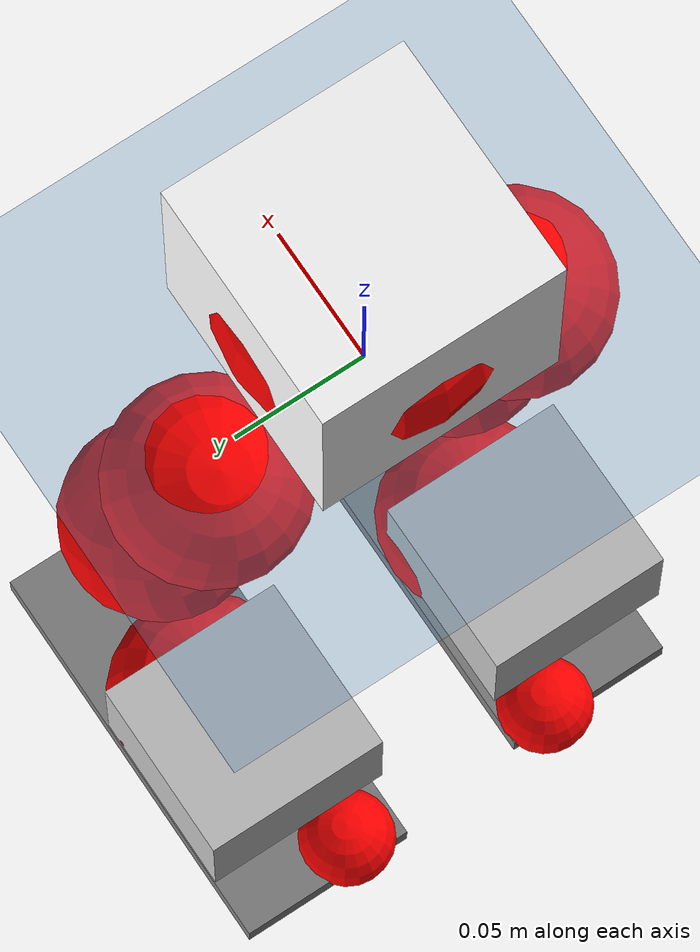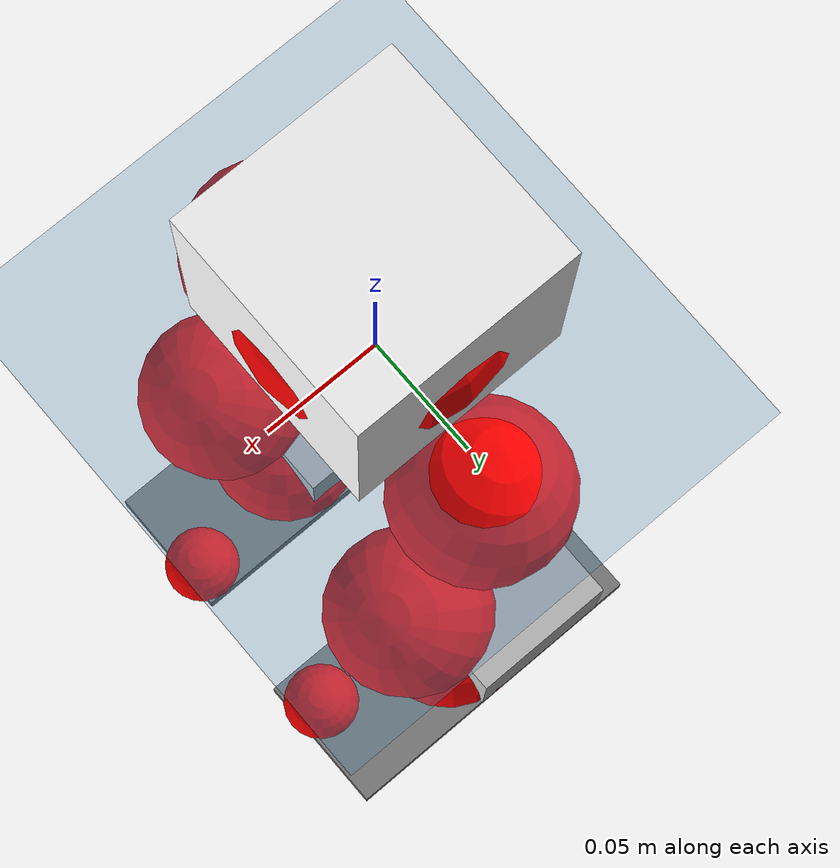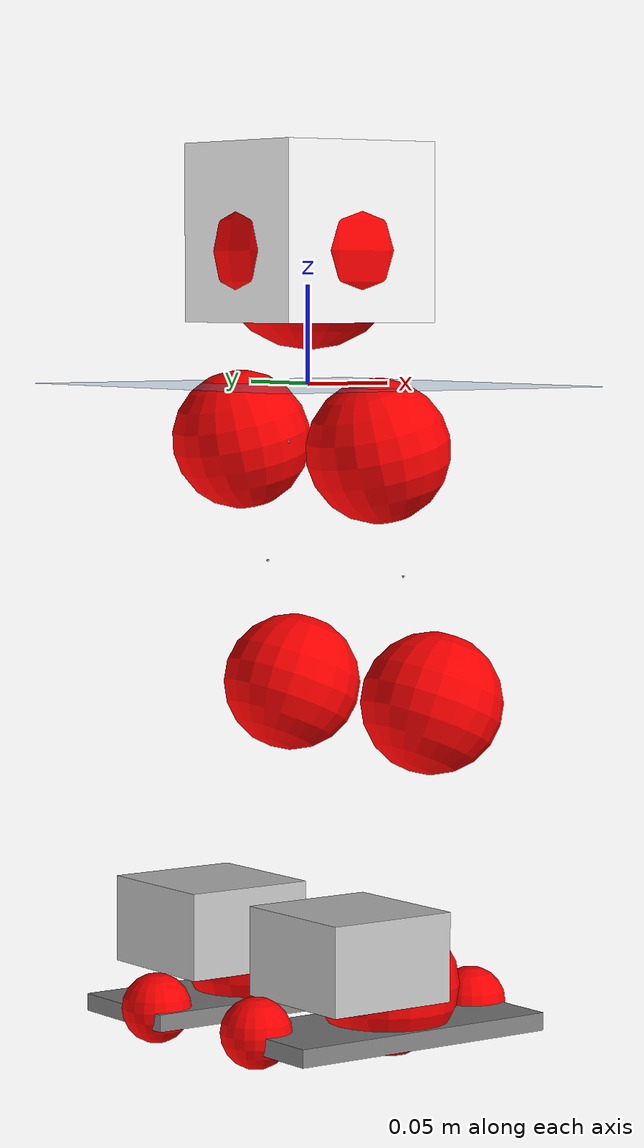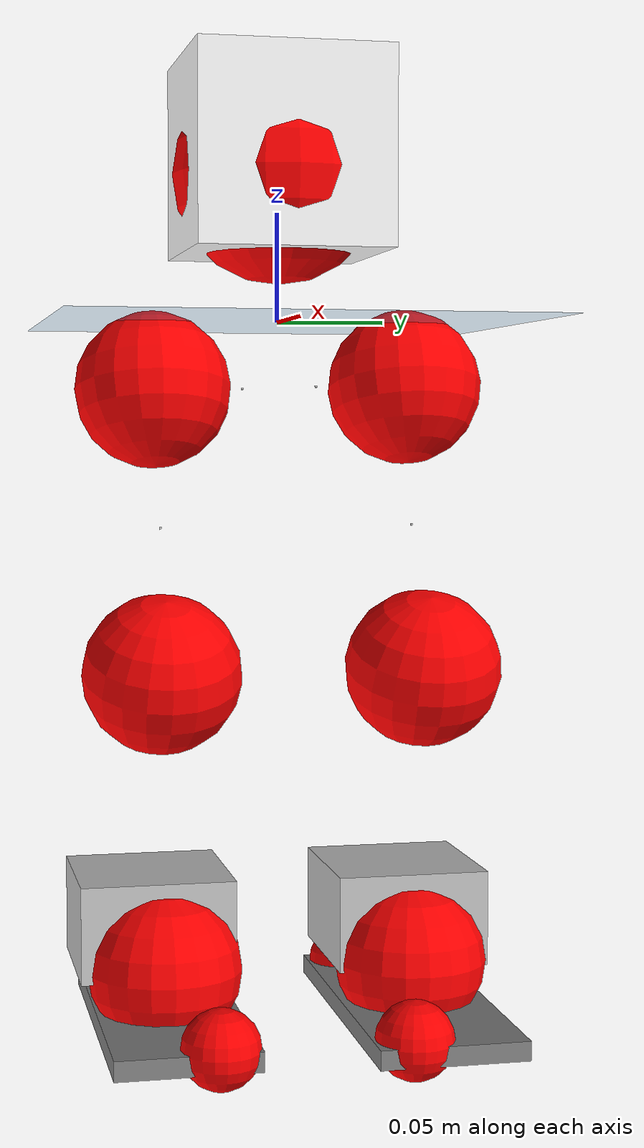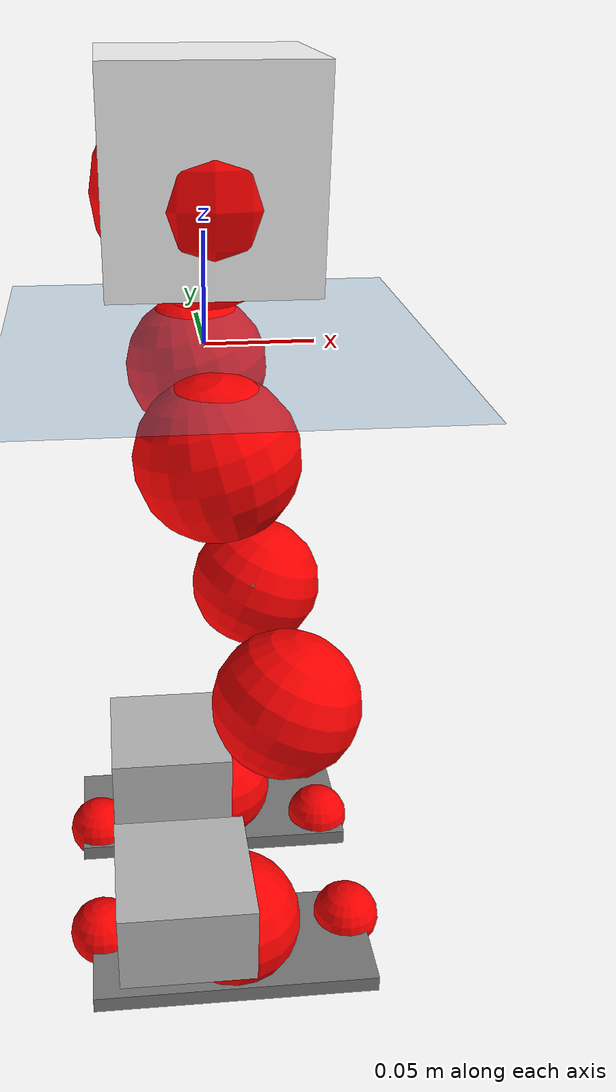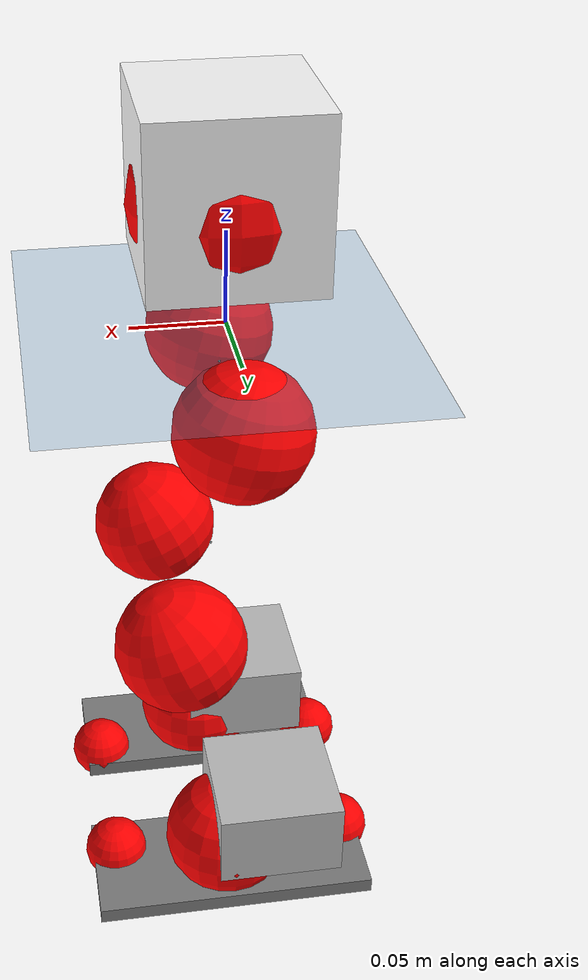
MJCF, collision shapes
<mujoco model="pi_12dof_release_v1">
  <compiler angle="radian" assetdir="assets" balanceinertia="true" inertiafromgeom="false"/>

  <option timestep="0.005" density="1.2" viscosity="2e-05"/>

  <size nkey="1"/>

  <visual>
    <quality shadowsize="8192"/>
    <map shadowclip="0.5"/>
  </visual>

  <default>
    <default class="/">
      <joint armature="0.01" damping="0.01" frictionloss="0.01"/>
      <geom contype="0" conaffinity="0" group="1" solref="-1000 -80"/>
      <site size="0.01 0.005 0.005" group="5"/>
      <general forcelimited="true" biastype="affine" gainprm="20" biasprm="0 -20 -0.5"/>
      <default class="foot">
        <geom size="0.0845 0.036 0.005" type="box" condim="6" group="4" priority="1" friction="0.9 0.2 0.2" solimp="0.015 1 0.005"/>
      </default>
      <default class="reward_collision_sphere">
        <geom group="5" rgba="1 0 0 1"/>
      </default>
    </default>
  </default>

  <asset>
    <texture type="skybox" colorspace="auto" name="//unnamed_texture_0" builtin="gradient" rgb1="0.95 0.95 0.95" rgb2="0.95 0.95 0.95" width="100" height="600"/>
    <texture type="2d" colorspace="auto" name="texplane" builtin="checker" rgb1="0.345 0.575 0.748" rgb2="0.345 0.575 0.748" markrgb="1 1 1" width="512" height="512"/>
    <material name="MatPlane" class="/" texture="texplane" texuniform="true" texrepeat="2 2" specular="0.9"/>
    <mesh name="baselink_1" class="/" file="baselink_1.STL"/>
    <mesh name="r_hip_pitch_link" class="/" file="r_hip_pitch_link.STL"/>
    <mesh name="r_hip_roll_link" class="/" file="r_hip_roll_link.STL"/>
    <mesh name="r_thigh_link" class="/" file="r_thigh_link.STL"/>
    <mesh name="r_calf_link" class="/" file="r_calf_link.STL"/>
    <mesh name="r_ankle_pitch_link" class="/" file="r_ankle_pitch_link.STL"/>
    <mesh name="r_ankle_roll_link" class="/" file="r_ankle_roll_link.STL"/>
    <mesh name="l_hip_pitch_link" class="/" file="l_hip_pitch_link.STL"/>
    <mesh name="l_hip_roll_link" class="/" file="l_hip_roll_link.STL"/>
    <mesh name="l_thigh_link" class="/" file="l_thigh_link.STL"/>
    <mesh name="l_calf_link" class="/" file="l_calf_link.STL"/>
    <mesh name="l_ankle_pitch_link" class="/" file="l_ankle_pitch_link.STL"/>
    <mesh name="l_ankle_roll_link" class="/" file="l_ankle_roll_link.STL"/>
  </asset>

  <worldbody>
    <geom name="floor" class="/" size="100 100 0.125" type="plane" group="0" material="MatPlane"/>
    <light name="toplight_shadow" class="/" pos="0 0 5" dir="0.0990148 0.0990148 -0.990148" type="directional" ambient="0.04 0.04 0.04" diffuse="0.55 0.55 0.55" specular="0.12 0.12 0.12"/>
    <light name="toplight_fill" class="/" pos="0 0 5" dir="0.0990148 0.0990148 -0.990148" type="directional" castshadow="false" ambient="0.04 0.04 0.04" diffuse="0.3 0.3 0.3" specular="0.08 0.08 0.08"/>
    <body name="trunk" pos="0.000729881 0.000304796 0.000666907" quat="1 -2.33514e-05 -6.63909e-05 7.48119e-05">
      <inertial pos="0.00175942 -0.000997913 0.0380275" quat="0.695059 0.00857929 0.0112675 0.718813" mass="1.5539" diaginertia="0.00972945 0.00223929 0.00311634"/>
      <joint name="//unnamed_joint_0" type="free"/>
      <geom name="//unnamed_geom_1" class="/" type="mesh" density="0" rgba="1 1 1 1" mesh="baselink_1"/>
      <geom name="//unnamed_geom_2" class="/" size="0.045041 0.045041 0.045041" pos="0 0 0.0755993" type="box" rgba="1 1 1 1"/>
      <geom name="//unnamed_geom_3" class="reward_collision_sphere" size="0.0495451" pos="0 0 0.0661494"/>
      <site name="imu" class="/" pos="0.00137666 -0.00420175 0.000224023" size="0.00900821"/>
      <camera name="track" class="/" pos="0 -1.51524 0" quat="0.707107 0.707107 0 0" mode="trackcom"/>
      <camera name="ego_camera" class="/" pos="0.0749887 0 0.170099" quat="-0.5 -0.5 0.5 0.5"/>
      <body name="r_hip_pitch_link" pos="0.000135321 -0.0173195 -0.0316728" quat="0.992202 -1.02717e-05 -0.124643 0.000325281">
        <inertial pos="0.00154392 -0.0420228 0.000294539" quat="-0.0194115 0.706456 -0.028387 0.706921" mass="0.274368" diaginertia="0.000110168 2.43806e-05 6.26022e-05"/>
        <joint name="r_hip_pitch_joint" class="/" pos="0 0 0" axis="0.000619072 -0.999999 0.00140122" stiffness="0.00331395" range="-1.73317 1.25459" armature="0.00891202" damping="0.011577" frictionloss="0.00869537"/>
        <geom name="//unnamed_geom_4" class="/" type="mesh" density="0" rgba="0.75294 0.75294 0.75294 1" mesh="r_hip_pitch_link"/>
        <geom name="//unnamed_geom_5" class="/" size="0.00045041 0.00045041 0.00045041" type="box" rgba="0.75294 0.75294 0.75294 1"/>
        <body name="r_hip_roll_link" pos="-0.000760261 -0.0415538 -0.000407702" quat="1 -0.000187328 -6.73653e-05 -0.000154191">
          <inertial pos="-0.00179566 0.000597513 -0.0585319" quat="0.70592 -0.0791001 -0.0825432 0.699004" mass="0.287593" diaginertia="0.000333896 6.97875e-05 9.87321e-05"/>
          <joint name="r_hip_roll_joint" class="/" pos="0 0 0" axis="-0.999994 0.00189302 0.00291642" range="-0.128504 0.512064" armature="0.00918855" damping="0.00172047" frictionloss="0.00884637"/>
          <geom name="//unnamed_geom_6" class="/" type="mesh" density="0" rgba="0.75294 0.75294 0.75294 1" mesh="r_hip_roll_link"/>
          <geom name="//unnamed_geom_7" class="/" size="0.00045041 0.00045041 0.00045041" type="box" rgba="0.75294 0.75294 0.75294 1"/>
          <geom name="//unnamed_geom_8" class="reward_collision_sphere" size="0.0360328"/>
          <body name="r_thigh_link" pos="0.000333748 0.000902397 -0.0650385" quat="1 8.76513e-06 0.000349699 0.00018358">
            <inertial pos="0.000922664 0.000575533 -0.0457958" quat="0.736252 0.676708 -4.97646e-05 -0.000107661" mass="0.0824618" diaginertia="0.000127588 2.362e-05 4.4227e-05"/>
            <joint name="r_thigh_joint" class="/" pos="0 0 0" axis="0.000914915 0.000557843 -0.999999" range="-0.291207 0.57704" armature="0.00935592" damping="0.00497548" frictionloss="0.00866589"/>
            <geom name="//unnamed_geom_9" class="/" type="mesh" density="0" rgba="0.75294 0.75294 0.75294 1" mesh="r_thigh_link"/>
            <geom name="//unnamed_geom_10" class="/" size="0.00045041 0.00045041 0.00045041" type="box" rgba="0.75294 0.75294 0.75294 1"/>
            <body name="r_calf_link" pos="0.000352017 -0.00175765 -0.0665529" quat="0.94774 -7.98353e-05 0.319045 3.64514e-05">
              <inertial pos="-0.000954676 -0.000428822 -0.0662558" quat="0.999981 -0.00457238 0.000730337 0.00401086" mass="0.596951" diaginertia="0.0035859 0.000883303 0.000134397"/>
              <joint name="r_calf_joint" class="/" pos="0 0 0" axis="0.00395261 -0.99999 0.00194091" range="-1.63992 0.649654" armature="0.00891429" damping="0.00993737" frictionloss="0.00872239"/>
              <geom name="//unnamed_geom_11" class="/" type="mesh" density="0" rgba="0.75294 0.75294 0.75294 1" mesh="r_calf_link"/>
              <geom name="//unnamed_geom_12" class="/" size="0.00045041 0.00045041 0.00045041" type="box" rgba="0.75294 0.75294 0.75294 1"/>
              <geom name="//unnamed_geom_13" class="reward_collision_sphere" size="0.0360328"/>
              <body name="r_ankle_pitch_link" pos="0.000519386 0.000635704 -0.131982" quat="0.980068 4.81168e-05 -0.198661 1.83876e-05">
                <inertial pos="0.00404204 0.00336588 -0.000123725" quat="0.00644963 0.707619 -0.00196548 0.706562" mass="0.128307" diaginertia="0.000311023 5.58059e-05 9.06792e-05"/>
                <joint name="r_ankle_pitch_joint" class="/" pos="0 0 0" axis="-4.93992e-06 -1 2.67625e-05" range="-1.30976 0.502346" armature="0.00887747" damping="0.00998717" frictionloss="0.0086178"/>
                <geom name="//unnamed_geom_14" class="/" type="mesh" density="0" rgba="0.75294 0.75294 0.75294 1" mesh="r_ankle_pitch_link"/>
                <geom name="//unnamed_geom_15" class="/" size="0.035132 0.0360328 0.0225205" type="box" rgba="0.75294 0.75294 0.75294 1"/>
                <body name="r_ankle_roll_link" pos="0.0767177 0.0037061 0.00013947" quat="1 -1.39545e-05 4.98987e-06 1.28964e-05">
                  <inertial pos="-0.0240304 -0.000245642 -0.013707" quat="0.559906 0.430754 0.434181 0.558967" mass="0.379891" diaginertia="0.00113047 0.000257517 0.0002154"/>
                  <joint name="r_ankle_roll_joint" class="/" pos="0 0 0" axis="-0.999993 0.0022148 -0.00296595" range="-0.155199 0.143783" armature="0.00899456" damping="0.00289198" frictionloss="0.00899151"/>
                  <geom name="//unnamed_geom_16" class="/" type="mesh" density="0" rgba="0.75294 0.75294 0.75294 1" mesh="r_ankle_roll_link"/>
                  <geom name="//unnamed_geom_17" class="/" type="mesh" rgba="0.75294 0.75294 0.75294 1" mesh="r_ankle_roll_link"/>
                  <geom name="right_foot" class="foot" size="0.0750582 0.0327101 0.00456319" pos="-0.0509923 0 -0.0415796"/>
                  <geom name="//unnamed_geom_19" class="reward_collision_sphere" size="0.0360328" pos="-0.0499925 0 -0.0188998"/>
                  <geom name="//unnamed_geom_20" class="reward_collision_sphere" size="0.0180164" pos="0.0149977 0.0151524 -0.0377997"/>
                  <geom name="//unnamed_geom_21" class="reward_collision_sphere" size="0.0180164" pos="-0.119982 0.0151524 -0.0377997"/>
                  <site name="right_foot" class="foot" pos="-0.0509923 0 -0.0415796" size="0.00900821"/>
                </body>
              </body>
            </body>
          </body>
        </body>
      </body>
      <body name="l_hip_pitch_link" pos="8.1406e-05 0.0176814 -0.0304884" quat="0.9922 -6.02035e-05 -0.124654 4.11253e-05">
        <inertial pos="0.000677071 0.0409877 0.000623394" quat="-0.0384996 0.7026 0.0291428 0.709945" mass="0.287679" diaginertia="0.000128645 2.63604e-05 7.6443e-05"/>
        <joint name="l_hip_pitch_joint" class="/" pos="0 0 0" axis="0.00112768 0.999999 -0.000331867" range="-1.25048 1.75325" armature="0.0089572" damping="0.00854903" frictionloss="0.00901008"/>
        <geom name="//unnamed_geom_22" class="/" type="mesh" density="0" rgba="0.75294 0.75294 0.75294 1" mesh="l_hip_pitch_link"/>
        <geom name="//unnamed_geom_23" class="/" size="0.00045041 0.00045041 0.00045041" type="box" rgba="0.75294 0.75294 0.75294 1"/>
        <body name="l_hip_roll_link" pos="-1.15809e-05 0.0425565 -9.40962e-05" quat="1 3.67524e-07 1.2529e-05 2.6235e-05">
          <inertial pos="-0.00117142 -0.000130709 -0.0575437" quat="0.69926 -0.0756164 -0.0775726 0.706612" mass="0.286727" diaginertia="0.000333681 6.99049e-05 9.62139e-05"/>
          <joint name="l_hip_roll_joint" class="/" pos="0 0 0" axis="-1 0.000244117 -0.000182293" range="-0.501476 0.10538" armature="0.00907359" damping="0.00464659" frictionloss="0.00904002"/>
          <geom name="//unnamed_geom_24" class="/" type="mesh" density="0" rgba="0.75294 0.75294 0.75294 1" mesh="l_hip_roll_link"/>
          <geom name="//unnamed_geom_25" class="/" size="0.00045041 0.00045041 0.00045041" type="box" rgba="0.75294 0.75294 0.75294 1"/>
          <geom name="//unnamed_geom_26" class="reward_collision_sphere" size="0.0360328"/>
          <body name="l_thigh_link" pos="2.16984e-05 -0.000464704 -0.06609" quat="1 -0.000189451 0.000138956 -2.83256e-06">
            <inertial pos="0.000400989 -0.000939715 -0.0449987" quat="0.678089 0.734978 0.000101063 0.00172241" mass="0.0824211" diaginertia="0.00012621 2.35511e-05 4.3309e-05"/>
            <joint name="l_thigh_joint" class="/" pos="0 0 0" axis="-0.000502118 -0.00128664 -0.999999" range="-0.603153 0.281443" armature="0.00868987" damping="0.00196051" frictionloss="0.00864567"/>
            <geom name="//unnamed_geom_27" class="/" type="mesh" density="0" rgba="0.75294 0.75294 0.75294 1" mesh="l_thigh_link"/>
            <geom name="//unnamed_geom_28" class="/" size="0.00045041 0.00045041 0.00045041" type="box" rgba="0.75294 0.75294 0.75294 1"/>
            <body name="l_calf_link" pos="-0.000237309 0.00117288 -0.0670404" quat="0.947627 9.18888e-05 0.319379 -0.000209781">
              <inertial pos="0.00076785 0.00150324 -0.0670744" quat="0.999994 0.00143723 0.00242955 0.00219357" mass="0.594344" diaginertia="0.00350939 0.000873783 0.000131936"/>
              <joint name="l_calf_joint" class="/" pos="0 0 0" axis="0.000741396 0.999992 -0.00387315" stiffness="0.00257543" range="-0.653514 1.66993" armature="0.00911828" damping="0.00623825" frictionloss="0.00913459"/>
              <geom name="//unnamed_geom_29" class="/" type="mesh" density="0" rgba="0.75294 0.75294 0.75294 1" mesh="l_calf_link"/>
              <geom name="//unnamed_geom_30" class="/" size="0.00045041 0.00045041 0.00045041" type="box" rgba="0.75294 0.75294 0.75294 1"/>
              <geom name="//unnamed_geom_31" class="reward_collision_sphere" size="0.0360328"/>
              <body name="l_ankle_pitch_link" pos="0.000466816 0.00102688 -0.133072" quat="0.98006 -2.46966e-05 -0.1987 -4.85963e-05">
                <inertial pos="0.00462868 -0.00090349 -6.09411e-06" quat="-0.00224266 0.70714 0.00144493 0.707069" mass="0.128903" diaginertia="0.000305832 5.47293e-05 9.00851e-05"/>
                <joint name="l_ankle_pitch_joint" class="/" pos="0 0 0" axis="0.000282064 1 3.33848e-05" stiffness="0.00176687" range="-0.504322 1.30044" armature="0.00903822" damping="0.00733685" frictionloss="0.00876051"/>
                <geom name="//unnamed_geom_32" class="/" type="mesh" density="0" rgba="0.75294 0.75294 0.75294 1" mesh="l_ankle_pitch_link"/>
                <geom name="//unnamed_geom_33" class="/" size="0.035132 0.0360328 0.0225205" type="box" rgba="0.75294 0.75294 0.75294 1"/>
                <body name="l_ankle_roll_link" pos="0.0759929 0.00024734 -0.000697956" quat="1 0.000118005 4.83716e-05 1.89652e-05">
                  <inertial pos="-0.0240271 -0.000712271 -0.0136549" quat="0.56158 0.428172 0.436556 0.557418" mass="0.38056" diaginertia="0.00112747 0.000257785 0.000212338"/>
                  <joint name="l_ankle_roll_joint" class="/" pos="0 0 0" axis="-0.999999 -0.000843353 0.000858808" range="-0.155086 0.139262" armature="0.00903485" damping="0.00398986" frictionloss="0.00917173"/>
                  <geom name="//unnamed_geom_34" class="/" type="mesh" density="0" rgba="0.75294 0.75294 0.75294 1" mesh="l_ankle_roll_link"/>
                  <geom name="//unnamed_geom_35" class="/" type="mesh" rgba="0.75294 0.75294 0.75294 1" mesh="l_ankle_roll_link"/>
                  <geom name="left_foot" class="foot" size="0.0795826 0.0343067 0.00447856" pos="-0.0509923 0 -0.0415796"/>
                  <geom name="//unnamed_geom_37" class="reward_collision_sphere" size="0.0360328" pos="-0.0499925 0 -0.0188998"/>
                  <geom name="//unnamed_geom_38" class="reward_collision_sphere" size="0.0180164" pos="0.0149977 -0.0151524 -0.0377997"/>
                  <geom name="//unnamed_geom_39" class="reward_collision_sphere" size="0.0180164" pos="-0.119982 -0.0151524 -0.0377997"/>
                  <site name="left_foot" class="foot" pos="-0.0509923 0 -0.0415796" size="0.00900821"/>
                </body>
              </body>
            </body>
          </body>
        </body>
      </body>
    </body>
  </worldbody>

  <contact>
    <pair class="/" geom1="floor" geom2="right_foot" name="//unnamed_contact_1"/>
    <pair class="/" geom1="floor" geom2="left_foot" name="//unnamed_contact_0"/>
  </contact>

  <actuator>
    <general name="r_hip_pitch_joint" class="/" joint="r_hip_pitch_joint" forcerange="-18.819 18.819" gainprm="18.0022" biasprm="0 -18.0022 -0.440727"/>
    <general name="r_hip_roll_joint" class="/" joint="r_hip_roll_joint" forcerange="-18.3014 18.3014" gainprm="18.0022" biasprm="0 -18.0022 -0.440727"/>
    <general name="r_thigh_joint" class="/" joint="r_thigh_joint" forcerange="-18.734 18.734" gainprm="18.0022" biasprm="0 -18.0022 -0.440727"/>
    <general name="r_calf_joint" class="/" joint="r_calf_joint" forcerange="-19.3206 19.3206" gainprm="18.0022" biasprm="0 -18.0022 -0.440727"/>
    <general name="r_ankle_pitch_joint" class="/" joint="r_ankle_pitch_joint" forcerange="-19.219 19.219" gainprm="18.0022" biasprm="0 -18.0022 -0.440727"/>
    <general name="r_ankle_roll_joint" class="/" joint="r_ankle_roll_joint" forcerange="-18.8411 18.8411" gainprm="18.0022" biasprm="0 -18.0022 -0.440727"/>
    <general name="l_hip_pitch_joint" class="/" joint="l_hip_pitch_joint" forcerange="-19.0165 19.0165" gainprm="18.0022" biasprm="0 -18.0022 -0.440727"/>
    <general name="l_hip_roll_joint" class="/" joint="l_hip_roll_joint" forcerange="-19.4978 19.4978" gainprm="18.0022" biasprm="0 -18.0022 -0.440727"/>
    <general name="l_thigh_joint" class="/" joint="l_thigh_joint" forcerange="-18.8836 18.8836" gainprm="18.0022" biasprm="0 -18.0022 -0.440727"/>
    <general name="l_calf_joint" class="/" joint="l_calf_joint" forcerange="-18.9346 18.9346" gainprm="18.0022" biasprm="0 -18.0022 -0.440727"/>
    <general name="l_ankle_pitch_joint" class="/" joint="l_ankle_pitch_joint" forcerange="-18.3442 18.3442" gainprm="18.0022" biasprm="0 -18.0022 -0.440727"/>
    <general name="l_ankle_roll_joint" class="/" joint="l_ankle_roll_joint" forcerange="-18.7933 18.7933" gainprm="18.0022" biasprm="0 -18.0022 -0.440727"/>
  </actuator>

  <sensor>
    <gyro site="imu" name="imu_angular_velocity"/>
    <velocimeter site="imu" name="imu_linear_velocity"/>
    <framelinvel objtype="site" objname="left_foot" name="left_foot_global_linear_velocity"/>
    <framelinvel objtype="site" objname="right_foot" name="right_foot_global_linear_velocity"/>
  </sensor>

  <keyframe>
    <key name="home" qpos="0 0 0.291 1 0 0 0 0.4 0 0 -0.8 0.4 0 -0.4 0 0 0.8 -0.4 0"/>
  </keyframe>
</mujoco>
